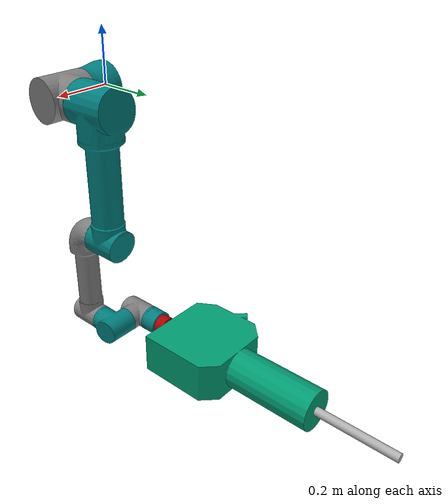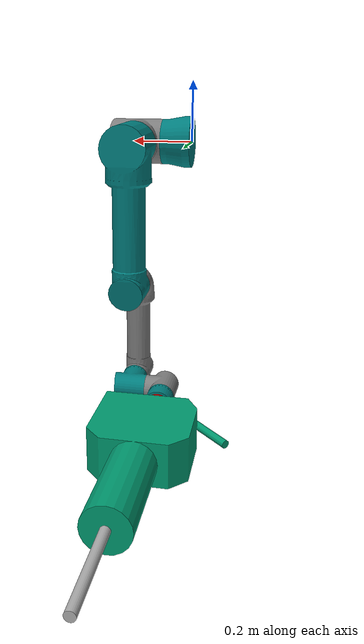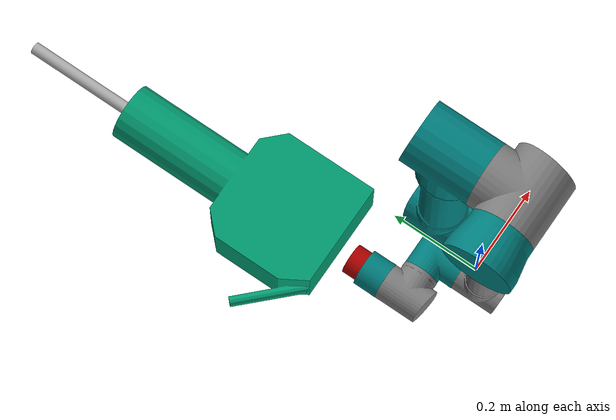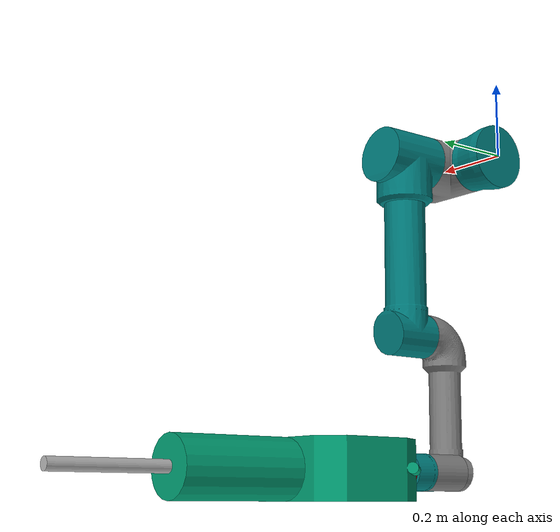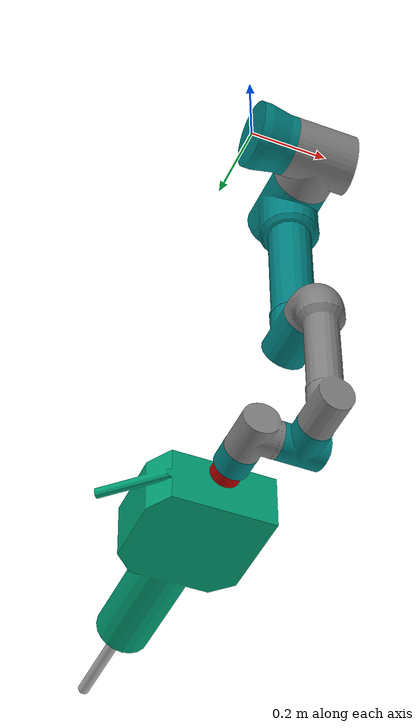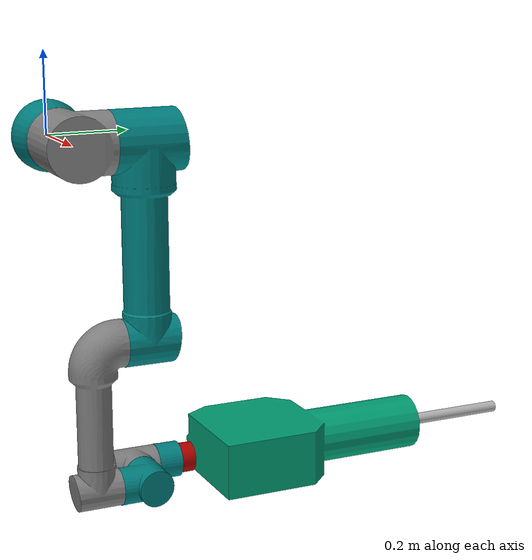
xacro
<?xml version="1.0"?>
<robot xmlns:xacro="http://ros.org/wiki/xacro"
       name="ur_ow" >

  <!-- common stuff -->
  <xacro:include filename="$(find ur_description)/urdf/common.gazebo.xacro" />

  <!-- ur10 -->
  <xacro:include filename="$(find ur16e_description)/urdf/ur16.urdf.xacro" />
    <xacro:ur16_robot prefix="chisel_">
  </xacro:ur16_robot>
  <!-- ROS base_link to UR 'Base' Coordinates transform -->
  <link name="chisel_base"/>
  <joint name="chisel_base_link-base_fixed_joint" type="fixed">
    <!-- NOTE: this rotation is only needed as long as base_link itself is
                not corrected wrt the real robot (ie: rotated over 180
                degrees)
    -->
    <origin xyz="0 0 0" rpy= "0.0 1.5708 0.0" />
    <parent link="chisel_base"/>
    <child link="chisel_base_link"/>
  </joint>

  <!-- arm -->

  <!-- end effector -->
  <xacro:include filename="$(find bot_digger_description)/urdf/include/chisel_hilti.urdf.xacro" />

  <!-- attach -->
  <xacro:ur_ow_robot prefix="chisel_" />

</robot>

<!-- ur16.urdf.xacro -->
<robot xmlns:xacro="http://wiki.ros.org/xacro">

 <xacro:macro name="ur16_robot" params="prefix">
  <link
    name="${prefix}base_link">
    <inertial>
      <origin
        xyz="1.1489E-34 -1.646E-16 0.046885"
        rpy="0 0 0" />
      <mass
        value="5.438" />
      <inertia
        ixx="0.013275"
        ixy="8.9258E-35"
        ixz="3.0589E-20"
        iyy="0.013275"
        iyz="-1.5807E-17"
        izz="0.017725" />
    </inertial>
    <visual>
      <origin
        xyz="0 0 0"
        rpy="0 0 0" />
      <geometry>
        <mesh
          filename="package://ur16e_description/meshes/base_link.STL" />
      </geometry>
      <material
        name="${prefix}">
        <color
          rgba="0 0.5 0.5 1" />
      </material>
    </visual>
    <collision>
      <origin
        xyz="0 0 0"
        rpy="0 0 0" />
      <geometry>
        <mesh
          filename="package://ur16e_description/meshes/base_link.STL" />
      </geometry>
    </collision>
  </link>
  <link
    name="${prefix}shoulder_link">
    <inertial>
      <origin
        xyz="-1.5245E-08 0.012594 0.0014894"
        rpy="0 0 0" />
      <mass
        value="9.4377" />
      <inertia
        ixx="0.038911"
        ixy="8.8912E-10"
        ixz="5.0205E-09"
        iyy="0.034442"
        iyz="-0.00033385"
        izz="0.032728" />
    </inertial>
    <visual>
      <origin
        xyz="0 0 -0.181"
        rpy="0 0 0" />
      <geometry>
        <mesh
          filename="package://ur16e_description/meshes/shoulder_link.STL" />
      </geometry>
      <material
        name="${prefix}">
        <color
          rgba="0.5 0.5 0.5 1" />
      </material>
    </visual>
    <collision>
      <origin
        xyz="0 0 -0.181"
        rpy="0 0 0" />
      <geometry>
        <mesh
          filename="package://ur16e_description/meshes/shoulder_link.STL" />
      </geometry>
    </collision>
  </link>
  <joint
    name="${prefix}shoulder_pan_joint"
    type="revolute">
    <origin
      xyz="0 0 0.181"
      rpy="0 0 0" />
    <parent
      link="${prefix}base_link" />
    <child
      link="${prefix}shoulder_link" />
    <axis
      xyz="0 0 1" />
    <limit
      lower="-6.28"
      upper="6.28"
      effort="150.0"
      velocity="3.14" />
  </joint>
  <link
    name="${prefix}upper_arm_link">
    <inertial>
      <origin
        xyz="-1.3872E-08 0.00081804 0.18812"
        rpy="0 0 0" />
      <mass
        value="22.37" />
      <inertia
        ixx="0.78628"
        ixy="3.8039E-08"
        ixz="9.7631E-08"
        iyy="0.77849"
        iyz="0.002245"
        izz="0.058581" />
    </inertial>
    <visual>
      <origin
        xyz="0 -0.176 -0.181"
        rpy="0 0 0" />
      <geometry>
        <mesh
          filename="package://ur16e_description/meshes/upper_arm_link.STL" />
      </geometry>
      <material
        name="${prefix}">
        <color
          rgba="0 0.5 0.5 1" />
      </material>
    </visual>
    <collision>
      <origin
        xyz="0 -0.176 -0.181"
        rpy="0 0 0" />
      <geometry>
        <mesh
          filename="package://ur16e_description/meshes/upper_arm_link.STL" />
      </geometry>
    </collision>
  </link>
  <joint
    name="${prefix}shoulder_lift_joint"
    type="revolute">
    <origin
      xyz="0 0.176 0"
      rpy="0 1.5708 0" /> <!-- edited to fix 0 deg config, was 0 0 0  -->
    <parent
      link="${prefix}shoulder_link" />
    <child
      link="${prefix}upper_arm_link" />
    <axis
      xyz="0 1 0" />
    <limit
      lower="-6.28"
      upper="6.28"
      effort="150.0"
      velocity="3.14" />
  </joint>
  <link
    name="${prefix}forearm_link">
    <inertial>
      <origin
        xyz="-1.2814E-07 0.0067539 0.16344"
        rpy="0 0 0" />
      <mass
        value="9.3652" />
      <inertia
        ixx="0.18612"
        ixy="5.431E-07"
        ixz="-2.0071E-07"
        iyy="0.18373"
        iyz="0.0098497"
        izz="0.014157" />
    </inertial>
    <visual>
      <origin
        xyz="0 -0.0388 -0.6605"
        rpy="0 0 0" />
      <geometry>
        <mesh
          filename="package://ur16e_description/meshes/lower_arm_link.STL" />
      </geometry>
      <material
        name="${prefix}">
        <color
          rgba="0.5 0.5 0.5 1" />
      </material>
    </visual>
    <collision>
      <origin
        xyz="0 -0.0388 -0.6605"
        rpy="0 0 0" />
      <geometry>
        <mesh
          filename="package://ur16e_description/meshes/lower_arm_link.STL" />
      </geometry>
    </collision>
  </link>
  <joint
    name="${prefix}elbow_joint"
    type="revolute">
    <origin
      xyz="0 -0.1372 0.4784"
      rpy="0 0 0" />
    <parent
      link="${prefix}upper_arm_link" />
    <child
      link="${prefix}forearm_link" />
    <axis
      xyz="0 1 0" />
    <limit
      lower="-6.28"
      upper="6.28"
      effort="150.0"
      velocity="3.14" />
  </joint>
  <link
    name="${prefix}wrist_1_link">
    <inertial>
      <origin
        xyz="-5.602E-08 0.11949 0.0011483"
        rpy="0 0 0" />
      <mass
        value="2.5949" />
      <inertia
        ixx="0.0050155"
        ixy="-6.6962E-10"
        ixz="-6.2086E-09"
        iyy="0.0036588"
        iyz="-0.00010442"
        izz="0.0041213" />
    </inertial>
    <visual>
      <origin
        xyz="0 -0.0388 -1.0194"
        rpy="0 0 0" />
      <geometry>
        <mesh
          filename="package://ur16e_description/meshes/wrist_1_link.STL" />
      </geometry>
      <material
        name="${prefix}">
        <color
          rgba="0 0.5 0.5 1" />
      </material>
    </visual>
    <collision>
      <origin
        xyz="0 -0.0388 -1.0194"
        rpy="0 0 0" />
      <geometry>
        <mesh
          filename="package://ur16e_description/meshes/wrist_1_link.STL" />
      </geometry>
    </collision>
  </link>
  <joint
    name="${prefix}wrist_1_joint"
    type="revolute">
    <origin
      xyz="0 0 0.36"
      rpy="0 1.5708 0" /> <!-- edited to fix 0 deg config, was 0 0 0  -->
    <parent
      link="${prefix}forearm_link" />
    <child
      link="${prefix}wrist_1_link" />
    <axis
      xyz="0 1 0" />
    <limit
      lower="-6.28"
      upper="6.28"
      effort="150.0"
      velocity="3.14" />
  </joint>
  <link
    name="${prefix}wrist_2_link">
    <inertial>
      <origin
        xyz="4.6306E-08 0.0012823 0.1101"
        rpy="0 0 0" />
      <mass
        value="2.3235" />
      <inertia
        ixx="0.0039588"
        ixy="6.2628E-09"
        ixz="1.2947E-09"
        iyy="0.003065"
        iyz="-8.5307E-05"
        izz="0.0033836" />
    </inertial>
    <visual>
      <origin
        xyz="0 -0.17415 -1.0194"
        rpy="0 0 0" />
      <geometry>
        <mesh
          filename="package://ur16e_description/meshes/wrist_2_link.STL" />
      </geometry>
      <material
        name="${prefix}">
        <color
          rgba="0.5 0.5 0.5 1" />
      </material>
    </visual>
    <collision>
     <origin
        xyz="0 -0.17415 -1.0194"
        rpy="0 0 0" />
      <geometry>
        <mesh
          filename="package://ur16e_description/meshes/wrist_2_link.STL" />
      </geometry>
    </collision>
  </link>
  <joint
    name="${prefix}wrist_2_joint"
    type="revolute">
    <origin
      xyz="0 0.13535 0"
      rpy="0 0 0" />
    <parent
      link="${prefix}wrist_1_link" />
    <child
      link="${prefix}wrist_2_link" />
    <axis
      xyz="0 0 1" />
    <limit
      lower="-6.28"
      upper="6.28"
      effort="150.0"
      velocity="3.14" />
  </joint>
  <link
    name="${prefix}wrist_3_link">
    <inertial>
      <origin
        xyz="-6.798E-19 0.086857 -2.2204E-16"
        rpy="0 0 0" />
      <mass
        value="1.0362" />
      <inertia
        ixx="0.0008397"
        ixy="1.6187E-21"
        ixz="-4.4721E-35"
        iyy="0.0010531"
        iyz="-5.841E-19"
        izz="0.0008397" />
    </inertial>
    <visual>
      <origin
        xyz="0 -0.17415 -1.13895"
        rpy="0 0 0" />
      <geometry>
        <mesh
          filename="package://ur16e_description/meshes/wrist_3_link.STL" />
      </geometry>
      <material
        name="${prefix}">
        <color
          rgba="0 0.5 0.5 1" />
      </material>
    </visual>
    <collision>
      <origin
        xyz="0 -0.17415 -1.13895"
        rpy="0 0 0" />
      <geometry>
        <mesh
          filename="package://ur16e_description/meshes/wrist_3_link.STL" />
      </geometry>
    </collision>
  </link>
  <joint
    name="${prefix}wrist_3_joint"
    type="revolute">
    <origin
      xyz="0 0 0.11955"
      rpy="0 0 0" />
    <parent
      link="${prefix}wrist_2_link" />
    <child
      link="${prefix}wrist_3_link" />
    <axis
      xyz="0 1 0" />
    <limit
      lower="-6.28"
      upper="6.28"
      effort="150.0"
      velocity="3.14" />
  </joint>
  <link
    name="${prefix}dummy_sensor_link">
    <inertial>
      <origin
        xyz="0 -0.01875 0"
        rpy="0 0 0" />
      <mass
        value="0.16567" />
      <inertia
        ixx="7.7658E-05"
        ixy="-3.0306E-37"
        ixz="6.3554E-37"
        iyy="0.00011649"
        iyz="0"
        izz="7.7658E-05" />
    </inertial>
    <visual>
      <origin
        xyz="0 -0.32865 -1.13895"
        rpy="0 0 0" />
      <geometry>
        <mesh
          filename="package://ur16e_description/meshes/dummy_sensor_link.STL" />
      </geometry>
      <material
        name="${prefix}">
        <color
          rgba="0.7 0 0 1" />
      </material>
    </visual>
    <collision>
       <origin
        xyz="0 -0.32865 -1.13895"
        rpy="0 0 0" />
      <geometry>
        <mesh
          filename="package://ur16e_description/meshes/dummy_sensor_link.STL" />
      </geometry>
    </collision>
  </link>
  <joint
    name="${prefix}sensor_mount_fixed"
    type="fixed">
    <origin
      xyz="0 0.1545 0"
      rpy="0 0 0" />
    <parent
      link="${prefix}wrist_3_link" />
    <child
      link="${prefix}dummy_sensor_link" />
    <axis
      xyz="0 1 0" />
  </joint>

  <link name="${prefix}tool0"/>

    <joint name="${prefix}wrist_3_link-tool0_fixed_joint" type="fixed">
      <origin xyz="0 0.1545 0" rpy="${pi/-2.0} 0 0"/>
      <parent link="${prefix}wrist_3_link"/>
      <child link="${prefix}tool0"/>
    </joint>

  <xacro:ur_arm_transmission prefix="${prefix}"  hw_interface="hardware_interface/PositionJointInterface"/>
  <xacro:ur_arm_gazebo prefix="${prefix}" />

  </xacro:macro>
</robot>

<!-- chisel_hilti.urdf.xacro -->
<robot xmlns:xacro="http://ros.org/wiki/xacro">

<!--
  Author: Toby Buckley
-->

  <xacro:property name="pi" value="3.14159265" />

  <!-- Inertia parameters -->
  <xacro:property name="makita_mass" value="4.0" />
  <xacro:property name="chisel_mass" value="1.0" />

  <!-- link lengths used in model -->
  <xacro:property name="force_sensor_width" value="0.04" />
  <xacro:property name="makita_length" value="0.15" />
  <xacro:property name="makita_width" value="0.23" />
  <xacro:property name="makita_height" value="0.15" />

 <!-- change the below value for different chisel lengths -->
  <xacro:property name="chisel_rod_length" value="0.317" />
  <xacro:property name="chisel_inflation" value="0.04" />
  <xacro:property name="chisel_length" value="0.41" />

  <xacro:property name="chisel_radius" value="0.015" />

  <xacro:macro name="cylinder_inertial" params="radius length mass *origin">
    <inertial>
      <mass value="${mass}" />
      <xacro:insert_block name="origin" />
      <inertia ixx="${0.0833333 * mass * (3 * radius * radius + length * length)}" ixy="0.0" ixz="0.0"
        iyy="${0.0833333 * mass * (3 * radius * radius + length * length)}" iyz="0.0"
        izz="${0.5 * mass * radius * radius}" />
    </inertial>
  </xacro:macro>

  <xacro:macro name="ur_ow_robot" params="prefix">

  <!-- attach to tool0  directions: z-pointed towards tool tip, y is "up", x is "out"-->

    <joint name="${prefix}makita_fixed_joint" type="fixed">
      <parent link="${prefix}tool0" />
      <child link = "${prefix}makita_link" />
      <origin xyz="0.0 0.0 ${force_sensor_width}" rpy="1.57 0.0 3.14" />
    </joint>

    <link name="${prefix}makita_link">
      <visual name='visual'>
        <geometry>
          <mesh filename="package://bot_digger_description/meshes/200218_hilti_tool_dummy.STL" />
        </geometry>
      </visual>
      <collision>
        <geometry>
          <mesh filename="package://bot_digger_description/meshes/200218_hilti_tool_dummy.STL" />
        </geometry>
      </collision>
    </link>

    <joint name="${prefix}chisel_fixed_joint" type="fixed">
      <parent link="${prefix}tool0" />
      <child link = "${prefix}chisel_link" />
      <origin xyz="0.0 0.0 0.58" rpy="0.0 0.0 1.57" />
    </joint>

    <link name="${prefix}chisel_link">
      <visual name='visual'>
        <geometry>
          <cylinder radius="${chisel_radius}" length="${chisel_rod_length + chisel_inflation}" />
        </geometry>
        <material name="LightGrey">
          <color rgba="0.7 0.7 0.7 1.0"/>
        </material>
        <origin xyz="0 0 ${chisel_rod_length / 2}" rpy="0 0 0" />
      </visual>
      <collision>
        <geometry>
          <cylinder radius="${chisel_radius}" length="${chisel_rod_length + chisel_inflation}" />
        </geometry>
        <origin xyz="0 0 ${chisel_rod_length / 2}" rpy="0 0 0" />
      </collision>
      <xacro:cylinder_inertial radius="${chisel_radius}" length="${chisel_rod_length}" mass="${chisel_mass}">
        <origin xyz="0.0 0.0 ${chisel_rod_length / 2}" rpy="0 0 0" />
      </xacro:cylinder_inertial>
    </link>

    <joint name="${prefix}tip_fixed_joint" type="fixed">
      <parent link="${prefix}chisel_link" />
      <child link = "${prefix}tip_link" />
      <!--origin xyz="0.0 0.0 ${chisel_length+.001}" rpy="0.0 0.0 ${pi/2.0}" /-->
      <origin xyz="0.0 0.0 ${chisel_rod_length+0.01}" rpy="0.0 0.0 ${pi/2.0}" />
    </joint>

    <!-- frame directions: z along rotation axis, x out top of drill, y out side of drill -->

    <link name="${prefix}tip_link">
      <collision>
        <geometry>
          <box size="0.01 0.01 0.01"/>
        </geometry>
        <origin rpy="0 0 0" xyz="0 0 -0.01"/>
      </collision>
    </link>

</xacro:macro>

</robot>
